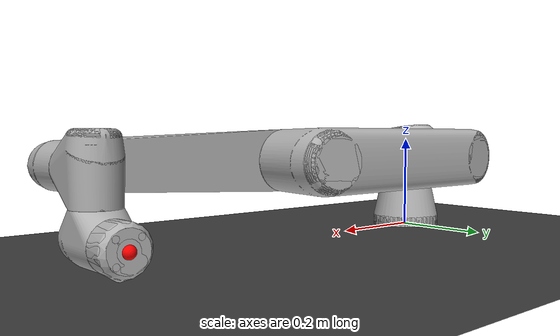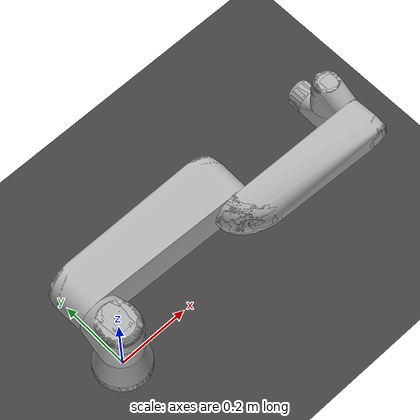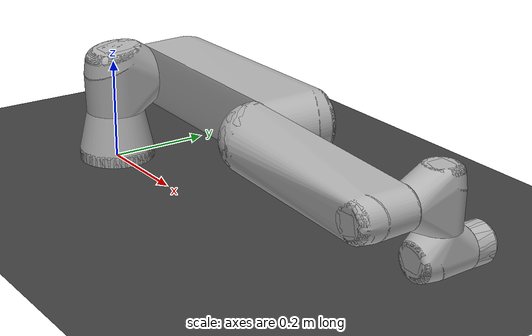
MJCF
<mujoco model="ur5e">
    <compiler angle="radian"/>
    <option gravity='0 0 -9.806' timestep="0.0005" iterations="50"/>
    <actuator>
        <!-- Physical limits of the actuator. -->
        <!-- Values taken from https://www.universal-robots.com/articles/ur-articles/max-joint-torques/ -->
        <motor ctrllimited="true" ctrlrange="-150.0 150.0" joint="shoulder_pan_joint" name="torq_j1"/>
        <motor ctrllimited="true" ctrlrange="-150.0 150.0" joint="shoulder_lift_joint" name="torq_j2"/>
        <motor ctrllimited="true" ctrlrange="-150.0 150.0" joint="elbow_joint" name="torq_j3"/>
        <motor ctrllimited="true" ctrlrange="-28.0 28.0" joint="wrist_1_joint" name="torq_j4"/>
        <motor ctrllimited="true" ctrlrange="-28.0 28.0" joint="wrist_2_joint" name="torq_j5"/>
        <motor ctrllimited="true" ctrlrange="-28.0 28.0" joint="wrist_3_joint" name="torq_j6"/>
    </actuator>
    <asset>
        <mesh name="base" file="meshes/base.stl" />
        <mesh name="shoulder" file="meshes/shoulder.stl" />
        <mesh name="upperarm" file="meshes/upperarm.stl" />
        <mesh name="forearm" file="meshes/forearm.stl" />
        <mesh name="wrist1" file="meshes/wrist1.stl" />
        <mesh name="wrist2" file="meshes/wrist2.stl" />
        <mesh name="wrist3" file="meshes/wrist3.stl" />
        <mesh name="base_vis" file="meshes/base_vis.stl" />
        <mesh name="shoulder_vis" file="meshes/shoulder_vis.stl" />
        <mesh name="upperarm_vis" file="meshes/upperarm_vis.stl" />
        <mesh name="forearm_vis" file="meshes/forearm_vis.stl" />
        <mesh name="wrist1_vis" file="meshes/wrist1_vis.stl" />
        <mesh name="wrist2_vis" file="meshes/wrist2_vis.stl" />
        <mesh name="wrist3_vis" file="meshes/wrist3_vis.stl" />
        <texture type='skybox' builtin='gradient' width='128' height='128' rgb1='0.4 0.6 0.8' rgb2='0 0 0'/>
        <texture name='plane' type='2d' builtin='checker' rgb1='0.2 0.2 0.2' rgb2='0.3 0.3 0.3' width='512' height='512'/>
        <material name='plane' reflectance='0.0' texture='plane' texrepeat='1 1' texuniform='true'/>
    </asset>
    <worldbody>
        <light directional="true" cutoff="4" exponent="20" diffuse="1 1 1" specular="0 0 0" pos=".9 .3 2.5" dir="-.9 -.3 -2.5 "/>
        <geom name='floor' type='plane' conaffinity='15' condim='3' material='plane' pos='0 0 0' size='1 1 0.125'/>
        <body name="base" pos="0 0 0">
            <inertial diaginertia="0 0 0" mass="0" pos="0 0 0"/>
            <geom type="mesh" contype="0" conaffinity="0" group="1" rgba="0.7 0.7 0.7 1" quat="0.707 0.707 0 0" mesh="base_vis" />
            <geom type="mesh" rgba="0.7 0.7 0.7 1" mesh="base" name="base_col"/>
            <body name="shoulder_link" pos="0 0 0.163">
                <inertial pos="0 0 0" mass="3.7" diaginertia="0.0102675 0.0102675 0.00666" />
                <joint name="shoulder_pan_joint" pos="0 0 0" axis="0 0 1" limited="true" range="-6.28319 6.28319" damping="0.001" frictionloss="0.01" />
                <geom type="mesh" contype="0" conaffinity="0" group="1" rgba="0.7 0.7 0.7 1" quat="0.707 0.707 0 0" mesh="shoulder_vis" name="shoulder_visual" />
                <geom type="mesh" rgba="0.7 0.7 0.7 1" mesh="shoulder" name="shoulder_col" />
                <body name="upper_arm_link" pos="0 0.138 0" quat="0.707107 0 0.707107 0">
                    <inertial pos="0 0 0.2125" mass="8.393" diaginertia="0.133886 0.133886 0.0151074" />
                    <joint name="shoulder_lift_joint" pos="0 0 0" axis="0 1 0" limited="true" range="-6.28319 6.28319" damping="0.001" frictionloss="0.01" />
                    <geom type="mesh" contype="0" conaffinity="0" group="1" rgba="0.7 0.7 0.7 1" quat="0.707 0.707 0 0" mesh="upperarm_vis" name="upperarm_visual" />
                    <geom type="mesh" rgba="0.7 0.7 0.7 1" mesh="upperarm" name="upperarm_col"/>
                    <body name="forearm_link" pos="0 -0.131 0.425">
                        <inertial pos="0 0 0.196" mass="2.275" diaginertia="0.0311796 0.0311796 0.004095" />
                        <joint name="elbow_joint" pos="0 0 0" axis="0 1 0" limited="true" range="-3.14159 3.14159" damping="0.001" frictionloss="0.01" />
                        <geom type="mesh" contype="0" conaffinity="0" group="1" rgba="0.7 0.7 0.7 1" quat="0.707 0.707 0 0" mesh="forearm_vis" name="forearm_visual" />
                        <geom type="mesh" rgba="0.7 0.7 0.7 1" mesh="forearm" name="forearm_col"/>
                        <body name="wrist_1_link" pos="0 0 0.392" quat="0.707107 0 0.707107 0">
                            <inertial pos="0 0.127 0" mass="1.219" diaginertia="0.0025599 0.0025599 0.0021942" />
                            <joint name="wrist_1_joint" pos="0 0 0" axis="0 1 0" limited="true" range="-6.28319 6.28319" damping="0.001" frictionloss="0.01" />
                            <geom type="mesh" contype="0" conaffinity="0" group="1" rgba="0.7 0.7 0.7 1" quat="0.707 0.707 0 0" mesh="wrist1_vis" name="wrist1_visual" />
                            <geom type="mesh" rgba="0.7 0.7 0.7 1" mesh="wrist1" name="wrist1_col" />
                            <body name="wrist_2_link" pos="0 0.127 0">
                                <inertial pos="0 0 0.1" mass="1.219" diaginertia="0.0025599 0.0025599 0.0021942" />
                                <joint name="wrist_2_joint" pos="0 0 0" axis="0 0 1" limited="true" range="-6.28319 6.28319" damping="0.001" frictionloss="0.01" />
                                <geom type="mesh" contype="0" conaffinity="0" group="1" rgba="0.7 0.7 0.7 1" quat="0.707 0.707 0 0" mesh="wrist2_vis" name="wrist2_visual" />
                                <geom type="mesh" rgba="0.7 0.7 0.7 1" mesh="wrist2" name="wrist2_col" />
                                <body name="wrist_3_link" pos="0 0 0.1">
                                    <inertial pos="0 0.0771683 0" quat="0.707107 0 0 0.707107" mass="0.1889" diaginertia="0.000132134 9.90863e-05 9.90863e-05" />
                                    <joint name="wrist_3_joint" pos="0 0 0" axis="0 1 0" limited="true" range="-6.28319 6.28319" damping="0.001" frictionloss="0.01" />
                                    <geom type="mesh" contype="0" conaffinity="0" group="1" rgba="0.7 0.7 0.7 1" quat="0.707 0.707 0 0" mesh="wrist3_vis" name="wrist3_visual" />
                                    <geom type="mesh" rgba="0.7 0.7 0.7 1" mesh="wrist3" name="wrist3_col" />
                                    <geom size="0.005 0.005 0.005" pos="0 0.09 0" quat="0.707107 0 0 0.707107" type="box" name="wrist3_col2"/>
                                    <site name='EndEffector' pos="0 0.098 0" quat="0.707 -0.707 0 0" size='0.01' rgba='1 0 0 1'/>
                                </body>
                            </body>
                        </body>
                    </body>
                </body>
            </body>
        </body>
    </worldbody>
    <sensor>
        <force name ='EndEffectorTouch' site="EndEffector"/>
    </sensor>
    <keyframe>
        <key name="home" qpos=" -0.0196 -2.38 1.71 -2.47 4.73 -4.71"/>
    </keyframe>
</mujoco>
